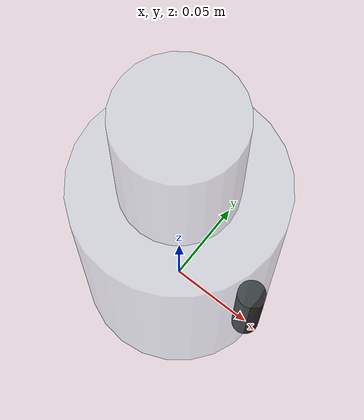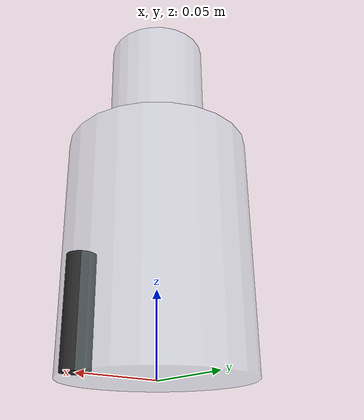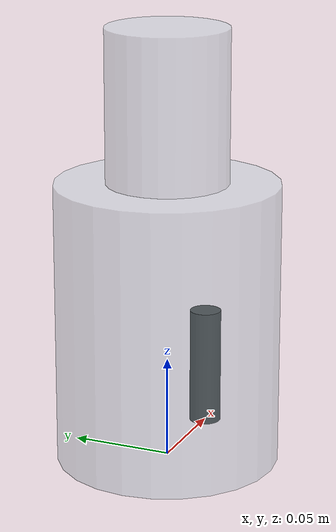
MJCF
<?xml version="1.0" encoding="utf-8"?>
<mujoco model="vacuum_filtration_setup">
  <compiler angle="radian" autolimits="true"/>
  <default>
    <default class="body"><geom contype="1" conaffinity="1"/></default>
  </default>
  <worldbody>
    <body name="base">
      <geom type="cylinder" size="0.055 0.07" pos="0 0 0.07" rgba="0.75 0.85 0.9 0.35" class="body"/>
      <body name="buchner_funnel" pos="0 0 0.165">
        <joint name="buchner_funnel_joint" type="slide" axis="0 0 1" range="0 0.06" damping="1.0" frictionloss="0.5"/>
  <geom type="cylinder" size="0.03 0.05" pos="0 0 0" rgba="0.75 0.85 0.9 0.35" class="body"/>
  <geom type="cylinder" size="0.008 0.03" pos="0.05 0 -0.135" rgba="0.15 0.15 0.15 1" class="body"/>
      </body>
    </body>
  </worldbody>
</mujoco>
